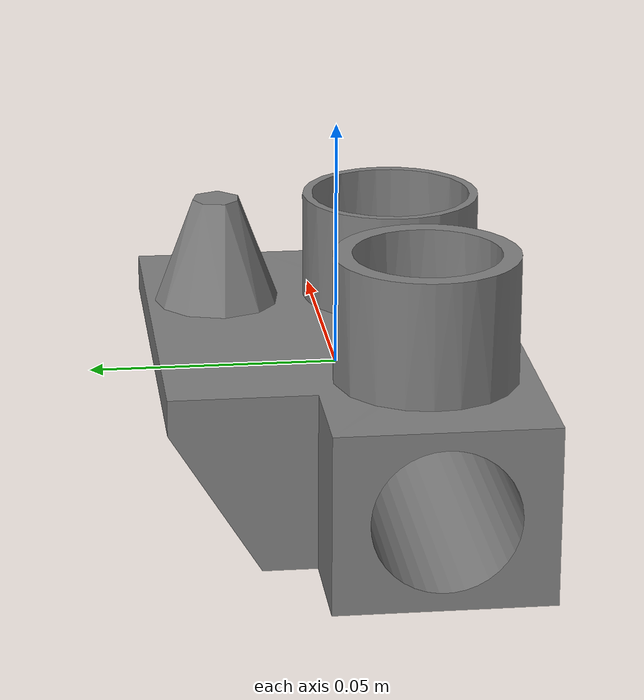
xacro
<?xml version="1.0"?>
<robot name="part_mrx" xmlns:xacro="http://ros.org/wiki/xacro">

  <!-- part_mrx center of obj/stl -->
  <link name="part_mrx">
        <visual>
        <geometry>
          <mesh filename="file:///objects/part_mrx/meshes/part_mrx.stl">
            <scale>1 1 1</scale>
          </mesh>
        </geometry>
        <material name="grey">
          <color rgba="0.5 0.5 0.5 1.0"/>
        </material>
      </visual>
  </link>

  <!-- part_mrx grasping frame-->
  <link name="part_mrx_grasping_frame">
    </link>

  <joint name="part_mrx_to_part_mrx_grasping_frame" type="fixed">
    <origin xyz="0.0 0.0 0.0" rpy="0 0 0"/>
    <parent link="part_mrx"/>
    <child link="part_mrx_grasping_frame" />
  </joint>

  <!-- part_mrx base -->
  <link name="part_mrx_base">
    </link>

  <joint name="part_mrx_to_part_mrx_base" type="fixed">
    <origin xyz="0.0 0.0 -0.03115" rpy="0 0 0"/>
    <parent link="part_mrx"/>
    <child link="part_mrx_base" />
  </joint>

</robot>
